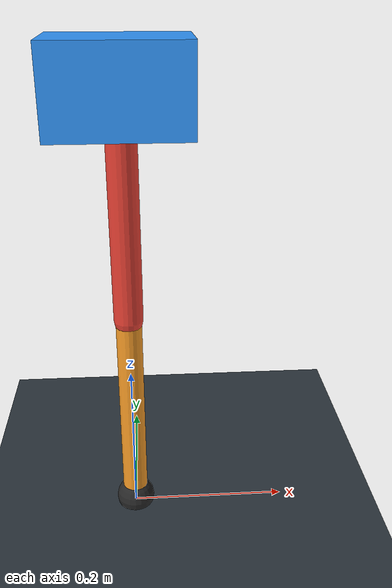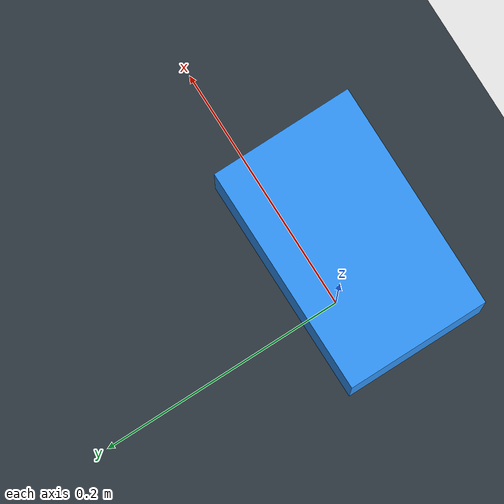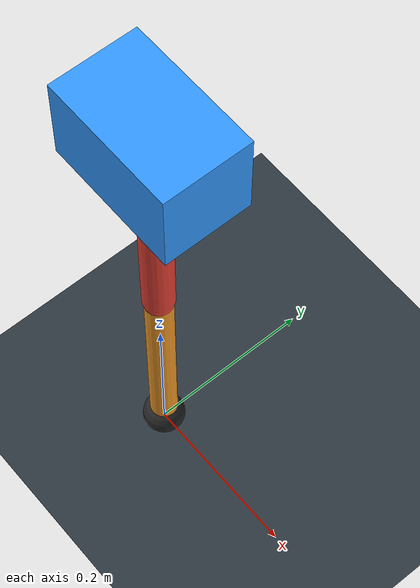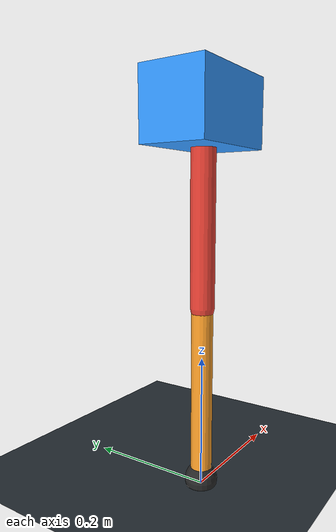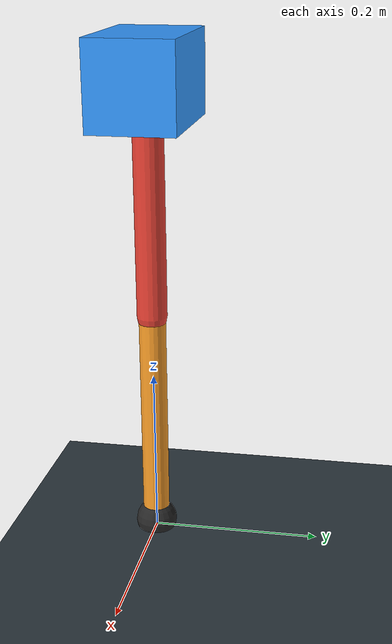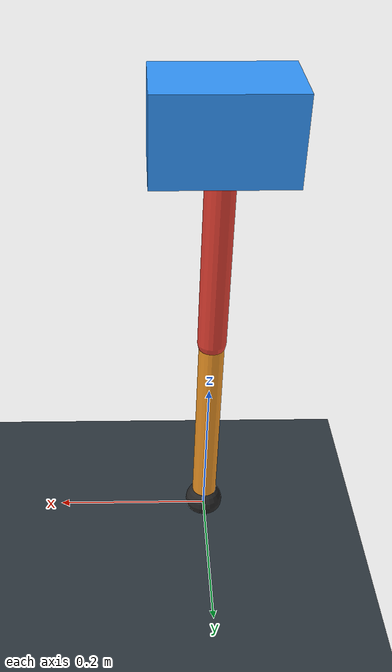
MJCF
<mujoco model="single_axis_two_bar">
  <compiler angle="radian" inertiafromgeom="true"/>
  <option timestep="0.001" integrator="implicitfast" gravity="0 0 -9.81"/>
  <default>
    <joint damping="0.08"/>
    <geom friction="1.2 0.01 0.0001" condim="3"/>
  </default>
  <worldbody>
    <geom name="floor" type="plane" size="5 5 0.1" rgba="0.18 0.22 0.25 1"/>
    <body name="carriage" pos="0 0 0.5530917562526367">
      <joint name="pole_slide" type="slide" axis="0 0 1"/>
      <geom name="payload" type="box" size="0.08 0.05 0.05" mass="2.5110004460152275" rgba="0.2 0.6 1 1"/>
      <body name="thigh" pos="0 0 0">
        <joint name="hip" type="hinge" axis="0 1 0"/>
        <geom name="thigh_link" type="capsule" fromto="0 0 0 0 0 -0.2764642122698848" size="0.018" mass="0.19698440439454645" rgba="0.9 0.25 0.2 1"/>
        <body name="shank" pos="0 0 -0.2764642122698848">
          <joint name="knee" type="hinge" axis="0 1 0"/>
          <geom name="shank_link" type="capsule" fromto="0 0 0 0 0 -0.2679602787122149" size="0.016" mass="0.19092523936513883" rgba="0.95 0.6 0.15 1"/>
          <geom name="foot" type="sphere" pos="0 0 -0.2679602787122149" size="0.025" mass="0.03" rgba="0.15 0.15 0.15 1"/>
          <site name="toe" pos="0 0 -0.2679602787122149" size="0.008"/>
        </body>
      </body>
    </body>
  </worldbody>
  <actuator>
    <motor name="hip_motor" joint="hip" ctrlrange="-38.12761690878714 38.12761690878714"/>
    <motor name="knee_motor" joint="knee" ctrlrange="-55.4577721879834 55.4577721879834"/>
  </actuator>
</mujoco>
